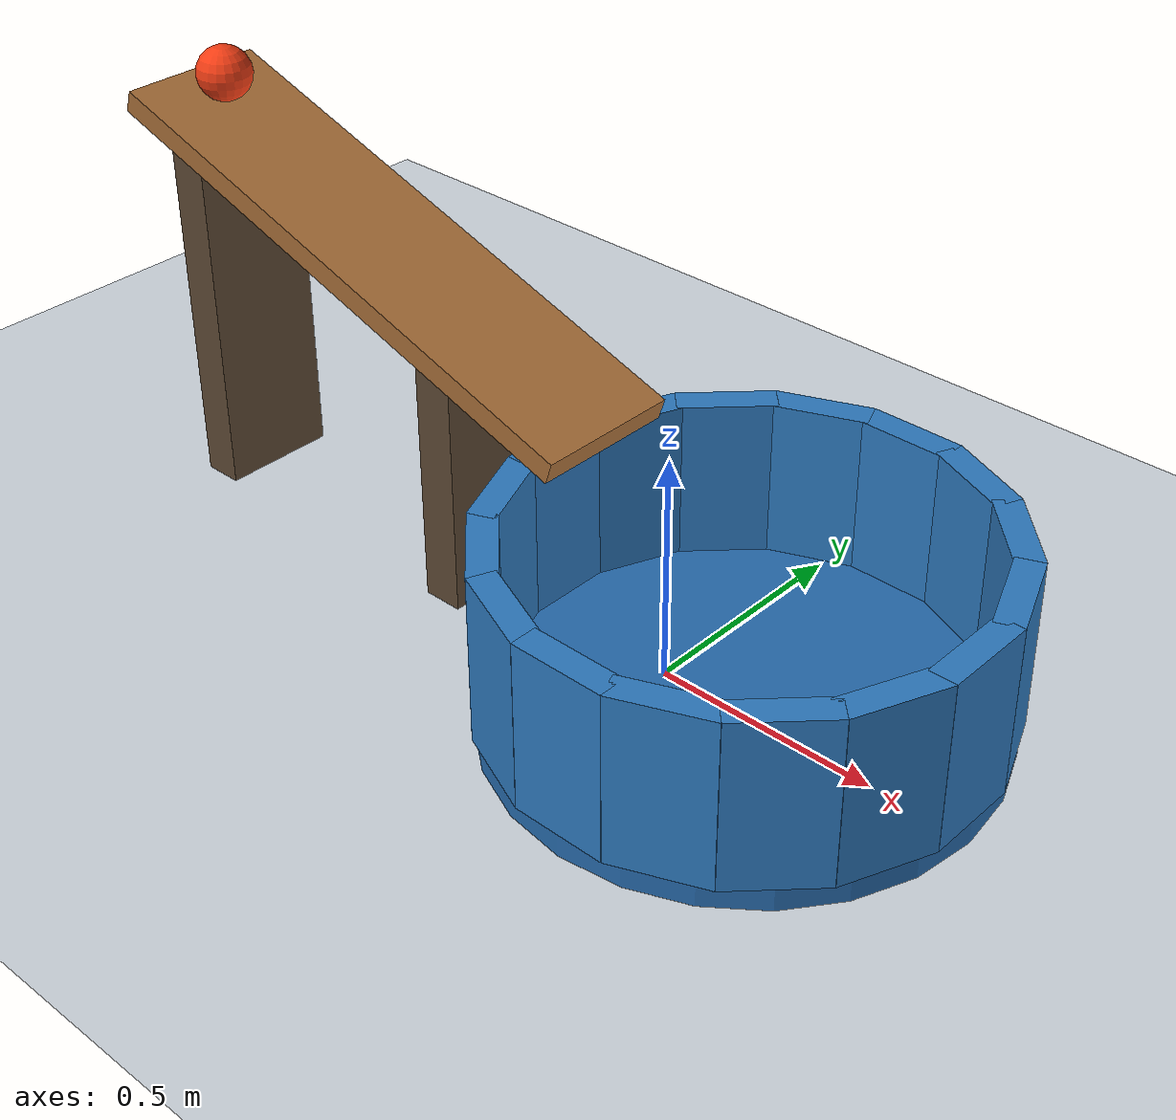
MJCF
<mujoco model="ball_rolls_into_cup">
  <compiler angle="degree"/>
  <option timestep="0.002" gravity="0 0 -9.81" integrator="implicitfast" cone="elliptic" iterations="80"/>
  <visual>
    <global azimuth="135" elevation="-25"/>
  </visual>
  <worldbody>
    <light name="overhead" pos="-0.5 -1.5 3" dir="0.1 0.3 -1"/>
    <camera name="overview" pos="-0.2 -3 1.9" xyaxes="1 0 0 0 0.45 0.893"/>
    <geom name="floor" type="plane" size="4 4 0.1" rgba="0.82 0.85 0.88 1" friction="0.9 0.02 0.015"/>

    <body name="ramp">
      <geom name="ramp_surface" type="box" pos="-0.757906 0 0.676283" euler="0 18.434949 0" size="0.632456 0.16 0.025" rgba="0.65 0.43 0.22 1" friction="0.9 0.005 0.006" condim="6" solref="0.012 1"/>
      <geom name="ramp_support_high" type="box" pos="-1.22 0 0.4" size="0.045 0.13 0.4" rgba="0.36 0.28 0.20 1"/>
      <geom name="ramp_support_low" type="box" pos="-0.5 0 0.275" size="0.045 0.13 0.275" rgba="0.36 0.28 0.20 1"/>
    </body>

    <body name="cup" pos="0.2 0 0">
      <geom name="cup_bottom" type="cylinder" pos="0 0 0.035" size="0.52 0.035" rgba="0.15 0.42 0.68 1" friction="0.9 0.02 0.02" condim="6" solref="0.01 1"/>
      <geom name="cup_wall_00" type="box" pos="0.49 0 0.235" euler="0 0 0" size="0.03 0.103 0.185" rgba="0.18 0.48 0.75 1" friction="0.9 0.02 0.02" condim="6" solref="0.01 1"/>
      <geom name="cup_wall_01" type="box" pos="0.452701 0.187515 0.235" euler="0 0 22.5" size="0.03 0.103 0.185" rgba="0.18 0.48 0.75 1" friction="0.9 0.02 0.02" condim="6" solref="0.01 1"/>
      <geom name="cup_wall_02" type="box" pos="0.346482 0.346482 0.235" euler="0 0 45" size="0.03 0.103 0.185" rgba="0.18 0.48 0.75 1" friction="0.9 0.02 0.02" condim="6" solref="0.01 1"/>
      <geom name="cup_wall_03" type="box" pos="0.187515 0.452701 0.235" euler="0 0 67.5" size="0.03 0.103 0.185" rgba="0.18 0.48 0.75 1" friction="0.9 0.02 0.02" condim="6" solref="0.01 1"/>
      <geom name="cup_wall_04" type="box" pos="0 0.49 0.235" euler="0 0 90" size="0.03 0.103 0.185" rgba="0.18 0.48 0.75 1" friction="0.9 0.02 0.02" condim="6" solref="0.01 1"/>
      <geom name="cup_wall_05" type="box" pos="-0.187515 0.452701 0.235" euler="0 0 112.5" size="0.03 0.103 0.185" rgba="0.18 0.48 0.75 1" friction="0.9 0.02 0.02" condim="6" solref="0.01 1"/>
      <geom name="cup_wall_06" type="box" pos="-0.346482 0.346482 0.235" euler="0 0 135" size="0.03 0.103 0.185" rgba="0.18 0.48 0.75 1" friction="0.9 0.02 0.02" condim="6" solref="0.01 1"/>
      <geom name="cup_wall_07" type="box" pos="-0.452701 0.187515 0.235" euler="0 0 157.5" size="0.03 0.103 0.185" rgba="0.18 0.48 0.75 1" friction="0.9 0.02 0.02" condim="6" solref="0.01 1"/>
      <geom name="cup_wall_08" type="box" pos="-0.49 0 0.235" euler="0 0 180" size="0.03 0.103 0.185" rgba="0.18 0.48 0.75 1" friction="0.9 0.02 0.02" condim="6" solref="0.01 1"/>
      <geom name="cup_wall_09" type="box" pos="-0.452701 -0.187515 0.235" euler="0 0 202.5" size="0.03 0.103 0.185" rgba="0.18 0.48 0.75 1" friction="0.9 0.02 0.02" condim="6" solref="0.01 1"/>
      <geom name="cup_wall_10" type="box" pos="-0.346482 -0.346482 0.235" euler="0 0 225" size="0.03 0.103 0.185" rgba="0.18 0.48 0.75 1" friction="0.9 0.02 0.02" condim="6" solref="0.01 1"/>
      <geom name="cup_wall_11" type="box" pos="-0.187515 -0.452701 0.235" euler="0 0 247.5" size="0.03 0.103 0.185" rgba="0.18 0.48 0.75 1" friction="0.9 0.02 0.02" condim="6" solref="0.01 1"/>
      <geom name="cup_wall_12" type="box" pos="0 -0.49 0.235" euler="0 0 270" size="0.03 0.103 0.185" rgba="0.18 0.48 0.75 1" friction="0.9 0.02 0.02" condim="6" solref="0.01 1"/>
      <geom name="cup_wall_13" type="box" pos="0.187515 -0.452701 0.235" euler="0 0 292.5" size="0.03 0.103 0.185" rgba="0.18 0.48 0.75 1" friction="0.9 0.02 0.02" condim="6" solref="0.01 1"/>
      <geom name="cup_wall_14" type="box" pos="0.346482 -0.346482 0.235" euler="0 0 315" size="0.03 0.103 0.185" rgba="0.18 0.48 0.75 1" friction="0.9 0.02 0.02" condim="6" solref="0.01 1"/>
      <geom name="cup_wall_15" type="box" pos="0.452701 -0.187515 0.235" euler="0 0 337.5" size="0.03 0.103 0.185" rgba="0.18 0.48 0.75 1" friction="0.9 0.02 0.02" condim="6" solref="0.01 1"/>
    </body>

    <body name="ball" pos="-1.2338 0 0.9255">
      <freejoint/>
      <geom name="ball" type="sphere" size="0.06" mass="0.12" rgba="0.95 0.24 0.08 1" friction="0.9 0.005 0.006" condim="6" solref="0.01 1"/>
    </body>
  </worldbody>

  <keyframe>
    <key name="start" qpos="-1.2338 0 0.9255 1 0 0 0" qvel="0 0 0 0 0 0"/>
  </keyframe>
</mujoco>
